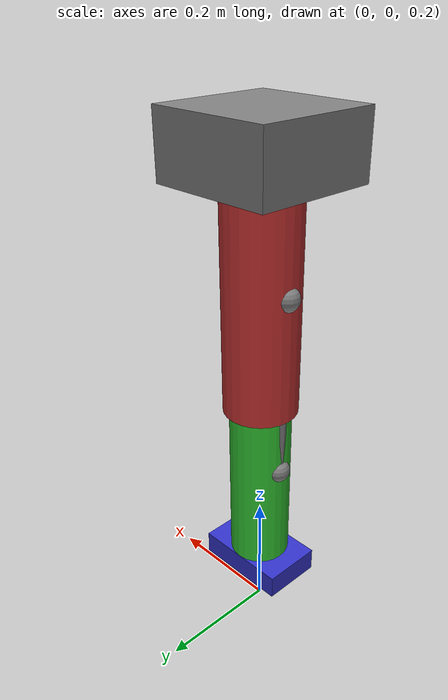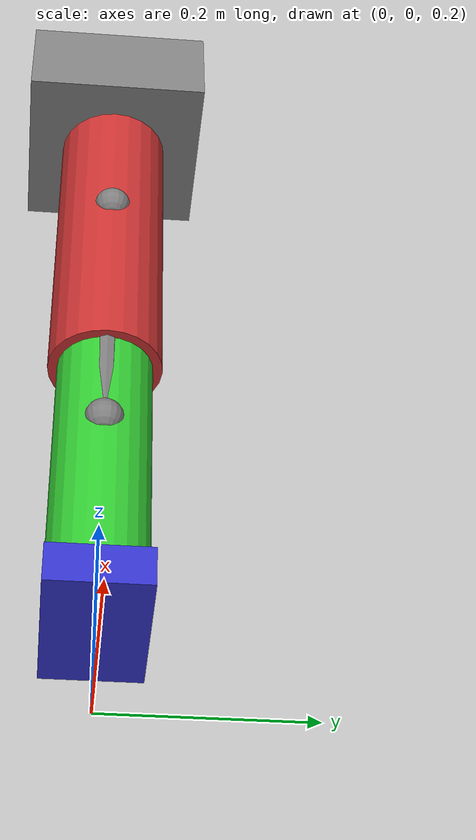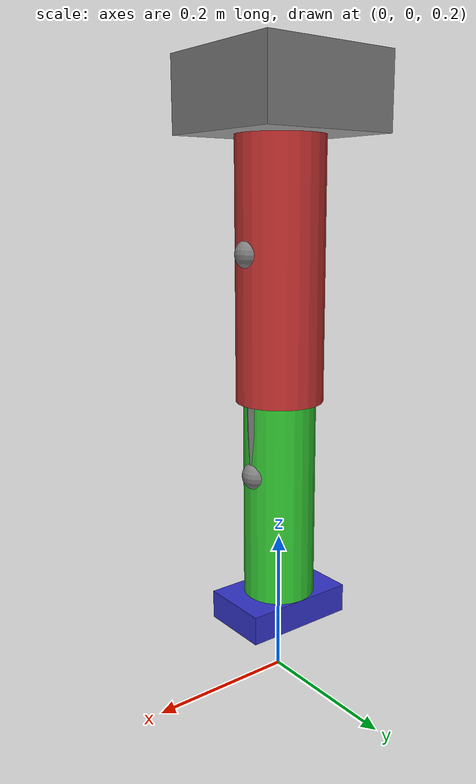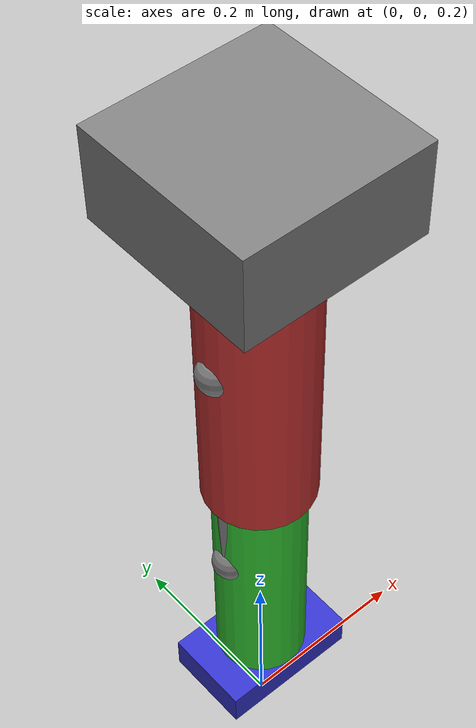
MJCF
<?xml version="1.0"?>
<!-- Full muscle-actuated system with proper muscle mechanics -->
<mujoco model="muscle_full">
  <option timestep="0.002" gravity="0 0 -9.81"/>

  <worldbody>
    <!-- Pelvis -->
    <body name="pelvis" pos="0 0 1">
      <geom type="box" size="0.1 0.1 0.05" rgba="0.5 0.5 0.5 1"/>

      <!-- Thigh -->
      <body name="thigh" pos="0 0 -0.2">
        <joint name="hip" type="hinge" axis="0 1 0" range="-3.14 3.14" damping="0.1"/>
        <geom type="cylinder" size="0.06 0.2" rgba="0.8 0.2 0.2 1"/>

        <!-- Muscle attachment points -->
        <site name="hip_flexor_origin" pos="0.05 0 0" size="0.02"/>
        <site name="hip_extensor_origin" pos="-0.05 0 0" size="0.02"/>

        <!-- Shank -->
        <body name="shank" pos="0 0 -0.3">
          <joint name="knee" type="hinge" axis="0 1 0" range="-3.14 0" damping="0.1"/>
          <geom type="cylinder" size="0.05 0.2" rgba="0.2 0.8 0.2 1"/>

          <!-- Muscle attachment points -->
          <site name="knee_flexor_insertion" pos="0.04 0 0" size="0.02"/>
          <site name="knee_extensor_insertion" pos="-0.04 0 0" size="0.02"/>

          <!-- Foot -->
          <body name="foot" pos="0 0 -0.2">
            <geom type="box" size="0.08 0.05 0.02" rgba="0.2 0.2 0.8 1"/>
          </body>
        </body>
      </body>
    </body>
  </worldbody>

  <!-- Tendons for muscle routing -->
  <tendon>
    <!-- Hip flexor muscle -->
    <spatial name="hip_flexor" width="0.01">
      <site site="hip_flexor_origin"/>
      <site site="knee_flexor_insertion"/>
    </spatial>

    <!-- Hip extensor muscle -->
    <spatial name="hip_extensor" width="0.01">
      <site site="hip_extensor_origin"/>
      <site site="knee_extensor_insertion"/>
    </spatial>

    <!-- Knee flexor muscle -->
    <spatial name="knee_flexor" width="0.01">
      <site site="knee_flexor_insertion"/>
      <site site="foot" pos="0 0 0"/>
    </spatial>

    <!-- Knee extensor muscle -->
    <spatial name="knee_extensor" width="0.01">
      <site site="knee_extensor_insertion"/>
      <site site="foot" pos="0 0 0"/>
    </spatial>
  </tendon>

  <!-- Muscle actuators with force-length-velocity relationships -->
  <actuator>
    <!-- Muscle actuators - these will be controlled with proper muscle dynamics -->
    <general name="hip_flexor_muscle" tendon="hip_flexor"
             gear="1.0" ctrllimited="true" ctrlrange="0 1"
             gaintype="muscle" biastype="muscle"/>
    <general name="hip_extensor_muscle" tendon="hip_extensor"
             gear="1.0" ctrllimited="true" ctrlrange="0 1"
             gaintype="muscle" biastype="muscle"/>
    <general name="knee_flexor_muscle" tendon="knee_flexor"
             gear="1.0" ctrllimited="true" ctrlrange="0 1"
             gaintype="muscle" biastype="muscle"/>
    <general name="knee_extensor_muscle" tendon="knee_extensor"
             gear="1.0" ctrllimited="true" ctrlrange="0 1"
             gaintype="muscle" biastype="muscle"/>
  </actuator>

  <!-- Sensors for muscle state -->
  <sensor>
    <!-- Tendon length sensors -->
    <tendonlength name="hip_flexor_length" tendon="hip_flexor"/>
    <tendonlength name="hip_extensor_length" tendon="hip_extensor"/>
    <tendonlength name="knee_flexor_length" tendon="knee_flexor"/>
    <tendonlength name="knee_extensor_length" tendon="knee_extensor"/>

    <!-- Tendon velocity sensors -->
    <tendonvel name="hip_flexor_velocity" tendon="hip_flexor"/>
    <tendonvel name="hip_extensor_velocity" tendon="hip_extensor"/>
    <tendonvel name="knee_flexor_velocity" tendon="knee_flexor"/>
    <tendonvel name="knee_extensor_velocity" tendon="knee_extensor"/>

    <!-- Muscle force sensors -->
    <actuatorfrc name="hip_flexor_force" actuator="hip_flexor_muscle"/>
    <actuatorfrc name="hip_extensor_force" actuator="hip_extensor_muscle"/>
    <actuatorfrc name="knee_flexor_force" actuator="knee_flexor_muscle"/>
    <actuatorfrc name="knee_extensor_force" actuator="knee_extensor_muscle"/>
  </sensor>
</mujoco>
